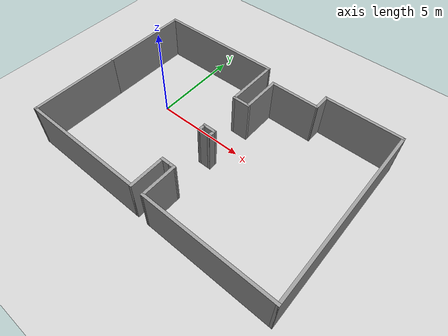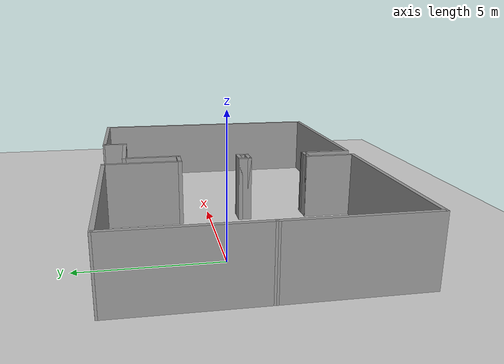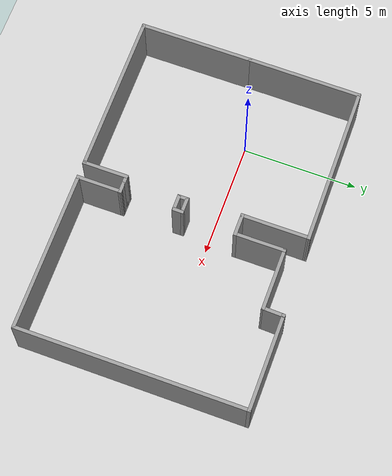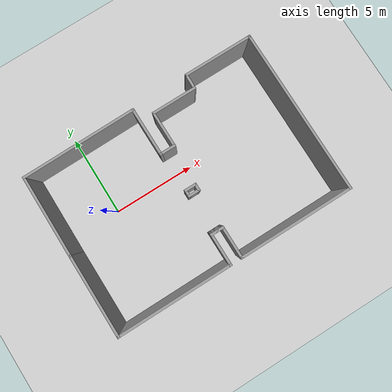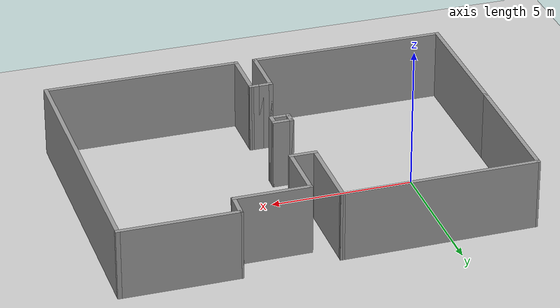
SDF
<?xml version='1.0'?>
<sdf version='1.6'>
  <world name='default'>
    <light name='sun' type='directional'>
      <cast_shadows>1</cast_shadows>
      <pose frame=''>0 0 10 0 -0 0</pose>
      <diffuse>0.8 0.8 0.8 1</diffuse>
      <specular>0.2 0.2 0.2 1</specular>
      <attenuation>
        <range>1000</range>
        <constant>0.9</constant>
        <linear>0.01</linear>
        <quadratic>0.001</quadratic>
      </attenuation>
      <direction>-0.5 0.1 -0.9</direction>
    </light>
    <model name='ground_plane'>
      <static>1</static>
      <link name='link'>
        <collision name='collision'>
          <geometry>
            <plane>
              <normal>0 0 1</normal>
              <size>100 100</size>
            </plane>
          </geometry>
          <surface>
            <friction>
              <ode>
                <mu>100</mu>
                <mu2>50</mu2>
              </ode>
              <torsional>
                <ode/>
              </torsional>
            </friction>
            <contact>
              <ode/>
            </contact>
            <bounce/>
          </surface>
          <max_contacts>10</max_contacts>
        </collision>
        <visual name='visual'>
          <cast_shadows>0</cast_shadows>
          <geometry>
            <plane>
              <normal>0 0 1</normal>
              <size>100 100</size>
            </plane>
          </geometry>
          <material>
            <script>
              <uri>file://media/materials/scripts/gazebo.material</uri>
              <name>Gazebo/Grey</name>
            </script>
          </material>
        </visual>
        <self_collide>0</self_collide>
        <enable_wind>0</enable_wind>
        <kinematic>0</kinematic>
      </link>
    </model>
    <gravity>0 0 -9.8</gravity>
    <magnetic_field>6e-06 2.3e-05 -4.2e-05</magnetic_field>
    <atmosphere type='adiabatic'/>
    <physics name='default_physics' default='0' type='ode'>
      <max_step_size>0.001</max_step_size>
      <real_time_factor>1</real_time_factor>
      <real_time_update_rate>1000</real_time_update_rate>
    </physics>
    <scene>
      <ambient>0.4 0.4 0.4 1</ambient>
      <background>0.7 0.7 0.7 1</background>
      <shadows>1</shadows>
    </scene>
    <audio>
      <device>default</device>
    </audio>
    <wind/>
    <spherical_coordinates>
      <surface_model>EARTH_WGS84</surface_model>
      <latitude_deg>0</latitude_deg>
      <longitude_deg>0</longitude_deg>
      <elevation>0</elevation>
      <heading_deg>0</heading_deg>
    </spherical_coordinates>
    <model name='CoboDeck'>
    <pose>2.205519 -0.603577 0 0 -0 0</pose>
    <link name='Wall_10'>
      <collision name='Wall_10_Collision'>
        <geometry>
          <box>
            <size>2 0.15 2.5</size>
          </box>
        </geometry>
        <pose>0 0 1.25 0 -0 0</pose>
      </collision>
      <visual name='Wall_10_Visual'>
        <pose>0 0 1.25 0 -0 0</pose>
        <geometry>
          <box>
            <size>2 0.15 2.5</size>
          </box>
        </geometry>
        <material>
          <script>
            <uri>file://media/materials/scripts/gazebo.material</uri>
            <name>Gazebo/Grey</name>
          </script>
          <ambient>1 1 1 1</ambient>
        </material>
        <meta>
          <layer>0</layer>
        </meta>
      </visual>
      <pose>1.650374 -4.20093 0 0 -0 1.5708</pose>
    </link>
    <link name='Wall_11'>
      <collision name='Wall_11_Collision'>
        <geometry>
          <box>
            <size>0.5 0.15 2.5</size>
          </box>
        </geometry>
        <pose>0 0 1.25 0 -0 0</pose>
      </collision>
      <visual name='Wall_11_Visual'>
        <pose>0 0 1.25 0 -0 0</pose>
        <geometry>
          <box>
            <size>0.5 0.15 2.5</size>
          </box>
        </geometry>
        <material>
          <script>
            <uri>file://media/materials/scripts/gazebo.material</uri>
            <name>Gazebo/Grey</name>
          </script>
          <ambient>1 1 1 1</ambient>
        </material>
        <meta>
          <layer>0</layer>
        </meta>
      </visual>
      <pose>1.825374 -3.27593 0 0 -0 0</pose>
    </link>
    <link name='Wall_12'>
      <collision name='Wall_12_Collision'>
        <geometry>
          <box>
            <size>0.5 0.15 2.5</size>
          </box>
        </geometry>
        <pose>0 0 1.25 0 -0 0</pose>
      </collision>
      <visual name='Wall_12_Visual'>
        <pose>0 0 1.25 0 -0 0</pose>
        <geometry>
          <box>
            <size>0.5 0.15 2.5</size>
          </box>
        </geometry>
        <material>
          <script>
            <uri>file://media/materials/scripts/gazebo.material</uri>
            <name>Gazebo/Grey</name>
          </script>
          <ambient>1 1 1 1</ambient>
        </material>
        <meta>
          <layer>0</layer>
        </meta>
      </visual>
      <pose>2.175374 -3.27593 0 0 -0 0</pose>
    </link>
    <link name='Wall_13'>
      <collision name='Wall_13_Collision'>
        <geometry>
          <box>
            <size>2 0.15 2.5</size>
          </box>
        </geometry>
        <pose>0 0 1.25 0 -0 0</pose>
      </collision>
      <visual name='Wall_13_Visual'>
        <pose>0 0 1.25 0 -0 0</pose>
        <geometry>
          <box>
            <size>2 0.15 2.5</size>
          </box>
        </geometry>
        <material>
          <script>
            <uri>file://media/materials/scripts/gazebo.material</uri>
            <name>Gazebo/Grey</name>
          </script>
          <ambient>1 1 1 1</ambient>
        </material>
        <meta>
          <layer>0</layer>
        </meta>
      </visual>
      <pose>2.34999 -4.20093 0 0 -0 -1.57121</pose>
    </link>
    <link name='Wall_14'>
      <collision name='Wall_14_Collision'>
        <geometry>
          <box>
            <size>7 0.15 2.5</size>
          </box>
        </geometry>
        <pose>0 0 1.25 0 -0 0</pose>
      </collision>
      <visual name='Wall_14_Visual'>
        <pose>0 0 1.25 0 -0 0</pose>
        <geometry>
          <box>
            <size>7 0.15 2.5</size>
          </box>
        </geometry>
        <material>
          <script>
            <uri>file://media/materials/scripts/gazebo.material</uri>
            <name>Gazebo/Grey</name>
          </script>
          <ambient>1 1 1 1</ambient>
        </material>
        <meta>
          <layer>0</layer>
        </meta>
      </visual>
      <pose>5.77499 -5.12593 0 0 -0 0</pose>
    </link>
    <link name='Wall_17'>
      <collision name='Wall_17_Collision'>
        <geometry>
          <box>
            <size>10 0.15 2.5</size>
          </box>
        </geometry>
        <pose>0 0 1.25 0 -0 0</pose>
      </collision>
      <visual name='Wall_17_Visual'>
        <pose>0 0 1.25 0 -0 0</pose>
        <geometry>
          <box>
            <size>10 0.15 2.5</size>
          </box>
        </geometry>
        <material>
          <script>
            <uri>file://media/materials/scripts/gazebo.material</uri>
            <name>Gazebo/Grey</name>
          </script>
          <ambient>1 1 1 1</ambient>
        </material>
        <meta>
          <layer>0</layer>
        </meta>
      </visual>
      <pose>9.19999 -0.20093 0 0 -0 1.5708</pose>
    </link>
    <link name='Wall_18'>
      <collision name='Wall_18_Collision'>
        <geometry>
          <box>
            <size>4.22637 0.15 2.5</size>
          </box>
        </geometry>
        <pose>0 0 1.25 0 -0 0</pose>
      </collision>
      <visual name='Wall_18_Visual'>
        <pose>0 0 1.25 0 -0 0</pose>
        <geometry>
          <box>
            <size>4.22637 0.15 2.5</size>
          </box>
        </geometry>
        <material>
          <script>
            <uri>file://media/materials/scripts/gazebo.material</uri>
            <name>Gazebo/Grey</name>
          </script>
          <ambient>1 1 1 1</ambient>
        </material>
        <meta>
          <layer>0</layer>
        </meta>
      </visual>
      <pose>7.1618 4.72407 0 0 -0 3.14159</pose>
    </link>
    <link name='Wall_20'>
      <collision name='Wall_20_Collision'>
        <geometry>
          <box>
            <size>1 0.15 2.5</size>
          </box>
        </geometry>
        <pose>0 0 1.25 0 -0 0</pose>
      </collision>
      <visual name='Wall_20_Visual'>
        <pose>0 0 1.25 0 -0 0</pose>
        <geometry>
          <box>
            <size>1 0.15 2.5</size>
          </box>
        </geometry>
        <material>
          <script>
            <uri>file://media/materials/scripts/gazebo.material</uri>
            <name>Gazebo/Grey</name>
          </script>
          <ambient>1 1 1 1</ambient>
        </material>
        <meta>
          <layer>0</layer>
        </meta>
      </visual>
      <pose>5.1118 4.29907 0 0 -0 -1.59859</pose>
    </link>
    <link name='Wall_21'>
      <collision name='Wall_21_Collision'>
        <geometry>
          <box>
            <size>2.75 0.15 2.5</size>
          </box>
        </geometry>
        <pose>0 0 1.25 0 -0 0</pose>
      </collision>
      <visual name='Wall_21_Visual'>
        <pose>0 0 1.25 0 -0 0</pose>
        <geometry>
          <box>
            <size>2.75 0.15 2.5</size>
          </box>
        </geometry>
        <material>
          <script>
            <uri>file://media/materials/scripts/gazebo.material</uri>
            <name>Gazebo/Grey</name>
          </script>
          <ambient>1 1 1 1</ambient>
        </material>
        <meta>
          <layer>0</layer>
        </meta>
      </visual>
      <pose>3.79999 3.87407 0 0 -0 3.14159</pose>
    </link>
    <link name='Wall_22'>
      <collision name='Wall_22_Collision'>
        <geometry>
          <box>
            <size>2.25 0.15 2.5</size>
          </box>
        </geometry>
        <pose>0 0 1.25 0 -0 0</pose>
      </collision>
      <visual name='Wall_22_Visual'>
        <pose>0 0 1.25 0 -0 0</pose>
        <geometry>
          <box>
            <size>2.25 0.15 2.5</size>
          </box>
        </geometry>
        <material>
          <script>
            <uri>file://media/materials/scripts/gazebo.material</uri>
            <name>Gazebo/Grey</name>
          </script>
          <ambient>1 1 1 1</ambient>
        </material>
        <meta>
          <layer>0</layer>
        </meta>
      </visual>
      <pose>2.49999 2.82407 0 0 -0 -1.5708</pose>
    </link>
    <link name='Wall_23'>
      <collision name='Wall_23_Collision'>
        <geometry>
          <box>
            <size>1 0.15 2.5</size>
          </box>
        </geometry>
        <pose>0 0 1.25 0 -0 0</pose>
      </collision>
      <visual name='Wall_23_Visual'>
        <pose>0 0 1.25 0 -0 0</pose>
        <geometry>
          <box>
            <size>1 0.15 2.5</size>
          </box>
        </geometry>
        <material>
          <script>
            <uri>file://media/materials/scripts/gazebo.material</uri>
            <name>Gazebo/Grey</name>
          </script>
          <ambient>1 1 1 1</ambient>
        </material>
        <meta>
          <layer>0</layer>
        </meta>
      </visual>
      <pose>2.07499 1.77407 0 0 -0 3.14159</pose>
    </link>
    <link name='Wall_24'>
      <collision name='Wall_24_Collision'>
        <geometry>
          <box>
            <size>3 0.15 2.5</size>
          </box>
        </geometry>
        <pose>0 0 1.25 0 -0 0</pose>
      </collision>
      <visual name='Wall_24_Visual'>
        <pose>0 0 1.25 0 -0 0</pose>
        <geometry>
          <box>
            <size>3 0.15 2.5</size>
          </box>
        </geometry>
        <material>
          <script>
            <uri>file://media/materials/scripts/gazebo.material</uri>
            <name>Gazebo/Grey</name>
          </script>
          <ambient>1 1 1 1</ambient>
        </material>
        <meta>
          <layer>0</layer>
        </meta>
      </visual>
      <pose>1.64999 3.19907 0 0 -0 1.5708</pose>
    </link>
    <link name='Wall_25'>
      <collision name='Wall_25_Collision'>
        <geometry>
          <box>
            <size>6.97617 0.15 2.5</size>
          </box>
        </geometry>
        <pose>0 0 1.25 0 -0 0</pose>
      </collision>
      <visual name='Wall_25_Visual'>
        <pose>0 0 1.25 0 -0 0</pose>
        <geometry>
          <box>
            <size>6.97617 0.15 2.5</size>
          </box>
        </geometry>
        <material>
          <script>
            <uri>file://media/materials/scripts/gazebo.material</uri>
            <name>Gazebo/Grey</name>
          </script>
          <ambient>1 1 1 1</ambient>
        </material>
        <meta>
          <layer>0</layer>
        </meta>
      </visual>
      <pose>-1.76301 4.59907 0 0 -0 -3.13427</pose>
    </link>
    <link name='Wall_28'>
      <collision name='Wall_28_Collision'>
        <geometry>
          <box>
            <size>0.75 0.15 2.5</size>
          </box>
        </geometry>
        <pose>0 0 1.25 0 -0 0</pose>
      </collision>
      <visual name='Wall_28_Visual'>
        <pose>0 0 1.25 0 -0 0</pose>
        <geometry>
          <box>
            <size>0.75 0.15 2.5</size>
          </box>
        </geometry>
        <material>
          <script>
            <uri>file://media/materials/scripts/gazebo.material</uri>
            <name>Gazebo/Grey</name>
          </script>
          <ambient>1 1 1 1</ambient>
        </material>
        <meta>
          <layer>0</layer>
        </meta>
      </visual>
      <pose>2.042009 -0.584229 0 0 -0 3.14159</pose>
    </link>
    <link name='Wall_29'>
      <collision name='Wall_29_Collision'>
        <geometry>
          <box>
            <size>0.5 0.15 2.5</size>
          </box>
        </geometry>
        <pose>0 0 1.25 0 -0 0</pose>
      </collision>
      <visual name='Wall_29_Visual'>
        <pose>0 0 1.25 0 -0 0</pose>
        <geometry>
          <box>
            <size>0.5 0.15 2.5</size>
          </box>
        </geometry>
        <material>
          <script>
            <uri>file://media/materials/scripts/gazebo.material</uri>
            <name>Gazebo/Grey</name>
          </script>
          <ambient>1 1 1 1</ambient>
        </material>
        <meta>
          <layer>0</layer>
        </meta>
      </visual>
      <pose>1.742009 -0.759229 0 0 -0 -1.5708</pose>
    </link>
    <link name='Wall_30'>
      <collision name='Wall_30_Collision'>
        <geometry>
          <box>
            <size>0.75 0.15 2.5</size>
          </box>
        </geometry>
        <pose>0 0 1.25 0 -0 0</pose>
      </collision>
      <visual name='Wall_30_Visual'>
        <pose>0 0 1.25 0 -0 0</pose>
        <geometry>
          <box>
            <size>0.75 0.15 2.5</size>
          </box>
        </geometry>
        <material>
          <script>
            <uri>file://media/materials/scripts/gazebo.material</uri>
            <name>Gazebo/Grey</name>
          </script>
          <ambient>1 1 1 1</ambient>
        </material>
        <meta>
          <layer>0</layer>
        </meta>
      </visual>
      <pose>2.042009 -0.934229 0 0 -0 0</pose>
    </link>
    <link name='Wall_31'>
      <collision name='Wall_31_Collision'>
        <geometry>
          <box>
            <size>0.5 0.15 2.5</size>
          </box>
        </geometry>
        <pose>0 0 1.25 0 -0 0</pose>
      </collision>
      <visual name='Wall_31_Visual'>
        <pose>0 0 1.25 0 -0 0</pose>
        <geometry>
          <box>
            <size>0.5 0.15 2.5</size>
          </box>
        </geometry>
        <material>
          <script>
            <uri>file://media/materials/scripts/gazebo.material</uri>
            <name>Gazebo/Grey</name>
          </script>
          <ambient>1 1 1 1</ambient>
        </material>
        <meta>
          <layer>0</layer>
        </meta>
      </visual>
      <pose>2.342009 -0.759229 0 0 -0 1.5708</pose>
    </link>
    <link name='Wall_5'>
      <collision name='Wall_5_Collision'>
        <geometry>
          <box>
            <size>5 0.15 2.5</size>
          </box>
        </geometry>
        <pose>0 0 1.25 0 -0 0</pose>
      </collision>
      <visual name='Wall_5_Visual'>
        <pose>0 0 1.25 0 -0 0</pose>
        <geometry>
          <box>
            <size>5 0.15 2.5</size>
          </box>
        </geometry>
        <material>
          <script>
            <uri>file://media/materials/scripts/gazebo.material</uri>
            <name>Gazebo/Grey</name>
          </script>
          <ambient>1 1 1 1</ambient>
        </material>
        <meta>
          <layer>0</layer>
        </meta>
      </visual>
      <pose>-5.18781 2.14907 0 0 -0 1.56593</pose>
    </link>
    <link name='Wall_8'>
      <collision name='Wall_8_Collision'>
        <geometry>
          <box>
            <size>5 0.15 2.5</size>
          </box>
        </geometry>
        <pose>0 0 1.25 0 -0 0</pose>
      </collision>
      <visual name='Wall_8_Visual'>
        <pose>0 0 1.25 0 -0 0</pose>
        <geometry>
          <box>
            <size>5 0.15 2.5</size>
          </box>
        </geometry>
        <material>
          <script>
            <uri>file://media/materials/scripts/gazebo.material</uri>
            <name>Gazebo/Grey</name>
          </script>
          <ambient>1 1 1 1</ambient>
        </material>
        <meta>
          <layer>0</layer>
        </meta>
      </visual>
      <pose>-5.19963 -2.70093 0 0 -0 -1.5708</pose>
    </link>
    <link name='Wall_9'>
      <collision name='Wall_9_Collision'>
        <geometry>
          <box>
            <size>7 0.15 2.5</size>
          </box>
        </geometry>
        <pose>0 0 1.25 0 -0 0</pose>
      </collision>
      <visual name='Wall_9_Visual'>
        <pose>0 0 1.25 0 -0 0</pose>
        <geometry>
          <box>
            <size>7 0.15 2.5</size>
          </box>
        </geometry>
        <material>
          <script>
            <uri>file://media/materials/scripts/gazebo.material</uri>
            <name>Gazebo/Grey</name>
          </script>
          <ambient>1 1 1 1</ambient>
        </material>
        <meta>
          <layer>0</layer>
        </meta>
      </visual>
      <pose>-1.77463 -5.12593 0 0 -0 0</pose>
    </link>
    <static>1</static>
  </model>
  <gui fullscreen='0'>
      <camera name='user_camera'>
        <pose frame=''>15.15147 3.69557 30.6005 0 1.22 3.145</pose>
        <view_controller>orbit</view_controller>
        <projection_type>perspective</projection_type>
      </camera>
    </gui>
  </world>
</sdf>
